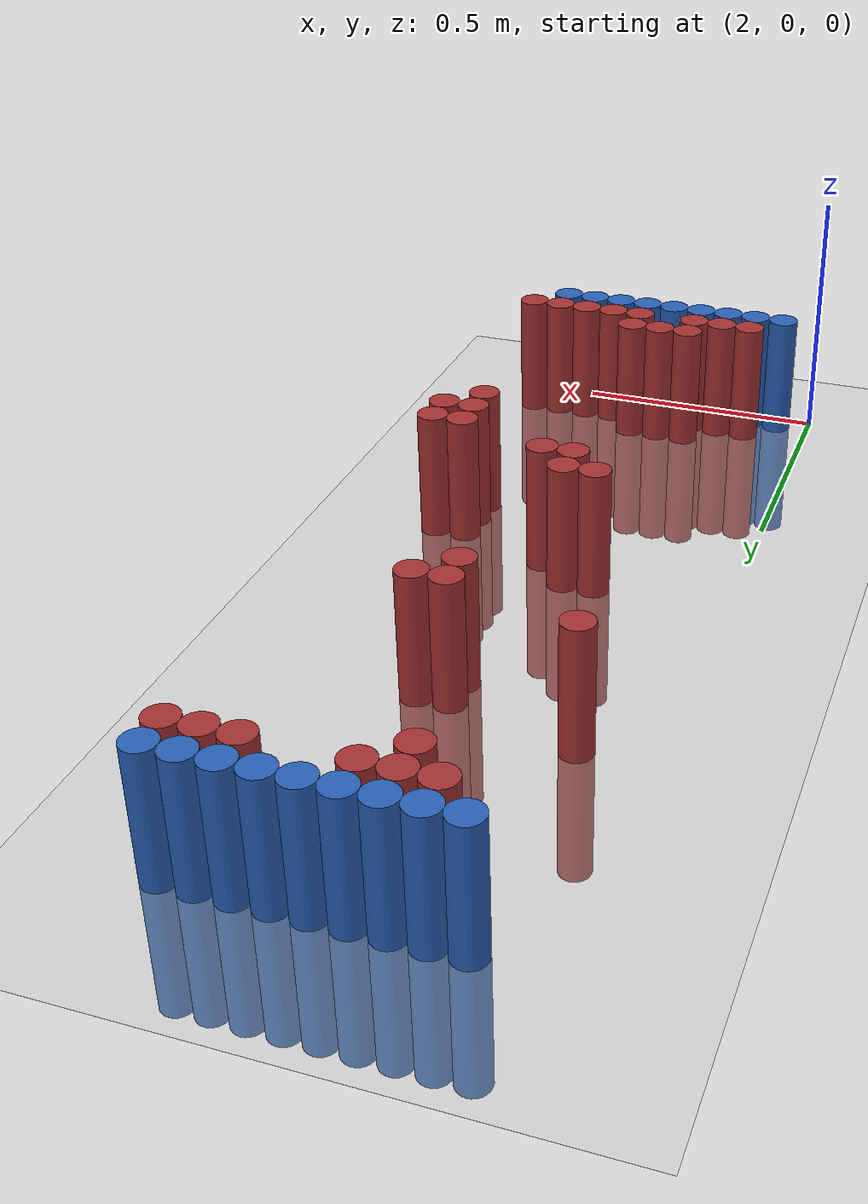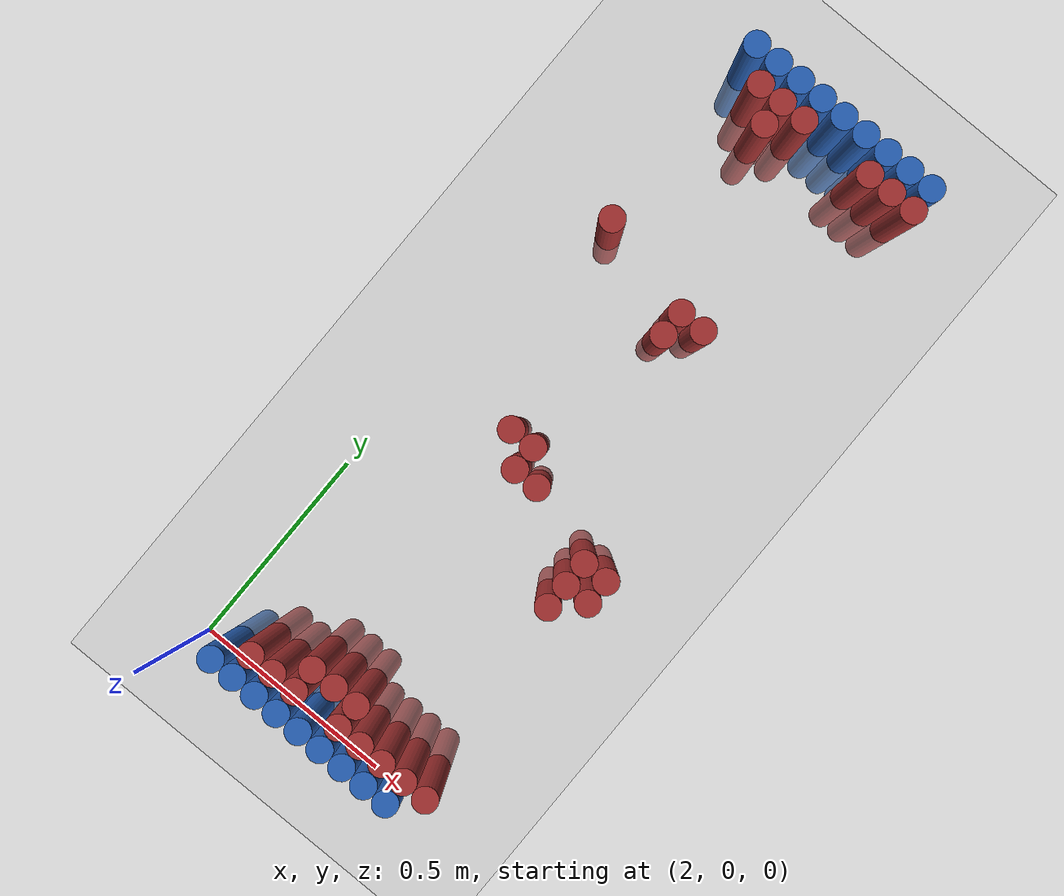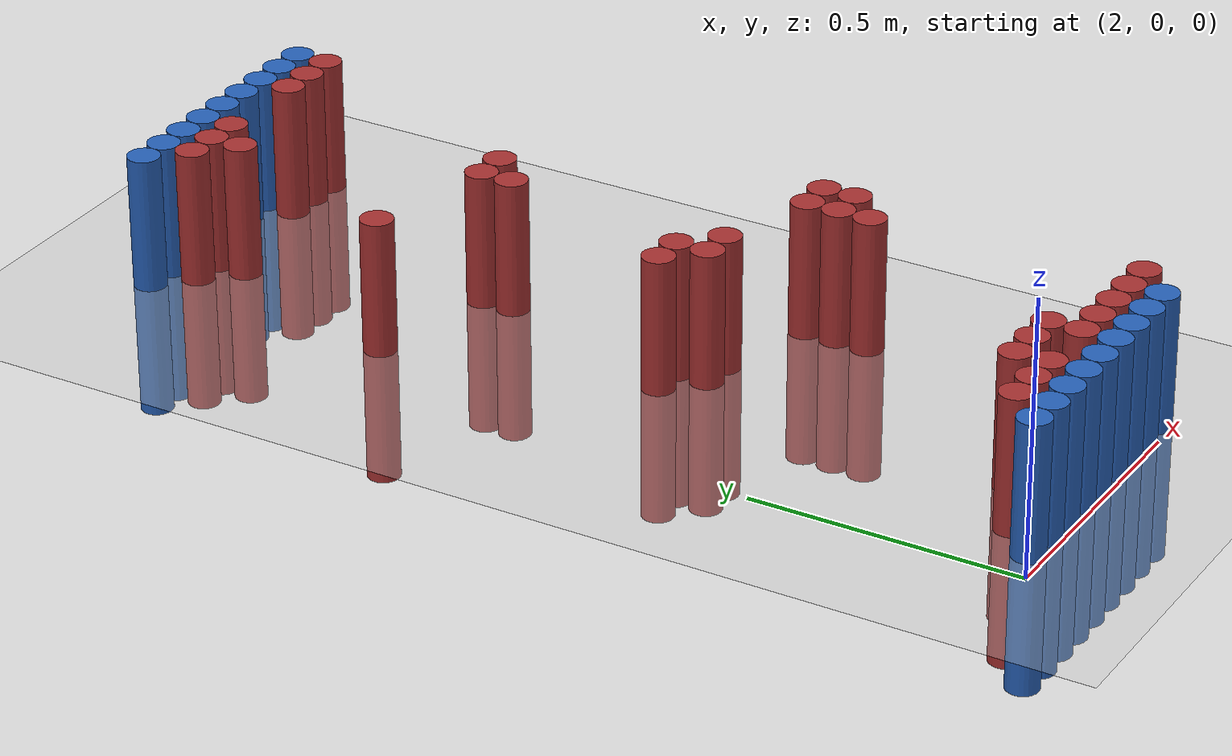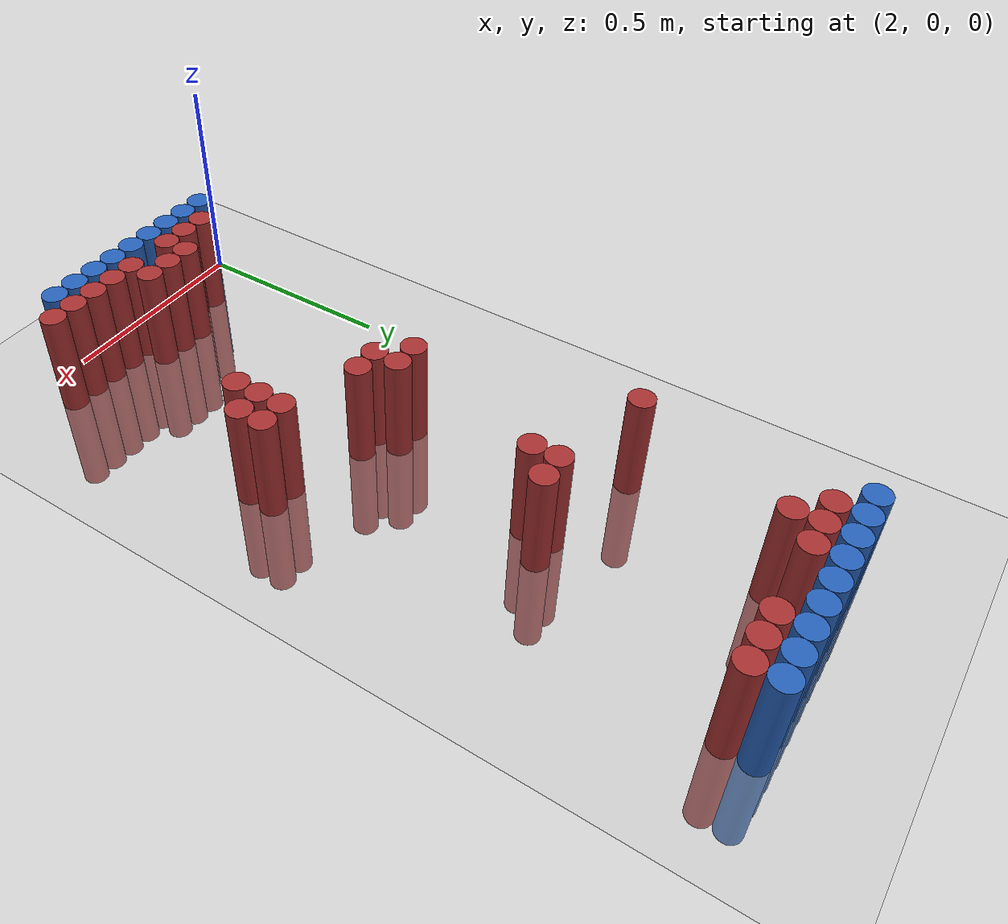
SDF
<sdf version="1.6">
 <world name="default">
  <model name="ground_plane">
   <static>1</static>
   <link name="link">
    <collision name="collision">
     <geometry><plane><normal>0 0 1</normal><size>100 100</size></plane></geometry>
     <surface><friction><ode><mu>100</mu><mu2>50</mu2></ode></friction></surface>
    </collision>
    <visual name="visual">
     <cast_shadows>0</cast_shadows>
     <geometry><plane><normal>0 0 1</normal><size>100 100</size></plane></geometry>
     <material>
      <script><uri>file://media/materials/scripts/gazebo.material</uri><name>Gazebo/Grey</name></script>
     </material>
    </visual>
   </link>
  </model>
  <model name="unit_cylinder_96">
   <static>1</static>
   <pose>2.130000 1.770000 0.000000 0.000000 0.000000 0.000000</pose>
   <link name="link">
    <inertial>
     <mass>1</mass>
     <inertia><ixx>0.145833</ixx><ixy>0</ixy><ixz>0</ixz><iyy>0.145833</iyy><iyz>0</iyz><izz>0.125</izz></inertia>
    </inertial>
    <collision name="collision">
     <geometry><cylinder><radius>0.030000</radius><length>0.5</length></cylinder></geometry>
    </collision>
    <visual name="visual">
     <geometry><cylinder><radius>0.030000</radius><length>0.5</length></cylinder></geometry>
     <material>
      <ambient>0.152000 0.379000 0.720000 1</ambient>
      <diffuse>0.152000 0.379000 0.720000 1</diffuse>
     </material>
     <material>
      <script><name>Gazebo/Grey</name><uri>file://media/materials/scripts/gazebo.material</uri></script>
     </material>
    </visual>
   </link>
  </model>
  <model name="unit_cylinder_97">
   <static>1</static>
   <pose>2.190000 1.770000 0.000000 0.000000 0.000000 0.000000</pose>
   <link name="link">
    <inertial>
     <mass>1</mass>
     <inertia><ixx>0.145833</ixx><ixy>0</ixy><ixz>0</ixz><iyy>0.145833</iyy><iyz>0</iyz><izz>0.125</izz></inertia>
    </inertial>
    <collision name="collision">
     <geometry><cylinder><radius>0.030000</radius><length>0.5</length></cylinder></geometry>
    </collision>
    <visual name="visual">
     <geometry><cylinder><radius>0.030000</radius><length>0.5</length></cylinder></geometry>
     <material>
      <ambient>0.152000 0.379000 0.720000 1</ambient>
      <diffuse>0.152000 0.379000 0.720000 1</diffuse>
     </material>
     <material>
      <script><name>Gazebo/Grey</name><uri>file://media/materials/scripts/gazebo.material</uri></script>
     </material>
    </visual>
   </link>
  </model>
  <model name="unit_cylinder_98">
   <static>1</static>
   <pose>2.250000 1.770000 0.000000 0.000000 0.000000 0.000000</pose>
   <link name="link">
    <inertial>
     <mass>1</mass>
     <inertia><ixx>0.145833</ixx><ixy>0</ixy><ixz>0</ixz><iyy>0.145833</iyy><iyz>0</iyz><izz>0.125</izz></inertia>
    </inertial>
    <collision name="collision">
     <geometry><cylinder><radius>0.030000</radius><length>0.5</length></cylinder></geometry>
    </collision>
    <visual name="visual">
     <geometry><cylinder><radius>0.030000</radius><length>0.5</length></cylinder></geometry>
     <material>
      <ambient>0.152000 0.379000 0.720000 1</ambient>
      <diffuse>0.152000 0.379000 0.720000 1</diffuse>
     </material>
     <material>
      <script><name>Gazebo/Grey</name><uri>file://media/materials/scripts/gazebo.material</uri></script>
     </material>
    </visual>
   </link>
  </model>
  <model name="unit_cylinder_99">
   <static>1</static>
   <pose>2.310000 1.770000 0.000000 0.000000 0.000000 0.000000</pose>
   <link name="link">
    <inertial>
     <mass>1</mass>
     <inertia><ixx>0.145833</ixx><ixy>0</ixy><ixz>0</ixz><iyy>0.145833</iyy><iyz>0</iyz><izz>0.125</izz></inertia>
    </inertial>
    <collision name="collision">
     <geometry><cylinder><radius>0.030000</radius><length>0.5</length></cylinder></geometry>
    </collision>
    <visual name="visual">
     <geometry><cylinder><radius>0.030000</radius><length>0.5</length></cylinder></geometry>
     <material>
      <ambient>0.152000 0.379000 0.720000 1</ambient>
      <diffuse>0.152000 0.379000 0.720000 1</diffuse>
     </material>
     <material>
      <script><name>Gazebo/Grey</name><uri>file://media/materials/scripts/gazebo.material</uri></script>
     </material>
    </visual>
   </link>
  </model>
  <model name="unit_cylinder_100">
   <static>1</static>
   <pose>2.370000 1.770000 0.000000 0.000000 0.000000 0.000000</pose>
   <link name="link">
    <inertial>
     <mass>1</mass>
     <inertia><ixx>0.145833</ixx><ixy>0</ixy><ixz>0</ixz><iyy>0.145833</iyy><iyz>0</iyz><izz>0.125</izz></inertia>
    </inertial>
    <collision name="collision">
     <geometry><cylinder><radius>0.030000</radius><length>0.5</length></cylinder></geometry>
    </collision>
    <visual name="visual">
     <geometry><cylinder><radius>0.030000</radius><length>0.5</length></cylinder></geometry>
     <material>
      <ambient>0.152000 0.379000 0.720000 1</ambient>
      <diffuse>0.152000 0.379000 0.720000 1</diffuse>
     </material>
     <material>
      <script><name>Gazebo/Grey</name><uri>file://media/materials/scripts/gazebo.material</uri></script>
     </material>
    </visual>
   </link>
  </model>
  <model name="unit_cylinder_101">
   <static>1</static>
   <pose>2.430000 1.770000 0.000000 0.000000 0.000000 0.000000</pose>
   <link name="link">
    <inertial>
     <mass>1</mass>
     <inertia><ixx>0.145833</ixx><ixy>0</ixy><ixz>0</ixz><iyy>0.145833</iyy><iyz>0</iyz><izz>0.125</izz></inertia>
    </inertial>
    <collision name="collision">
     <geometry><cylinder><radius>0.030000</radius><length>0.5</length></cylinder></geometry>
    </collision>
    <visual name="visual">
     <geometry><cylinder><radius>0.030000</radius><length>0.5</length></cylinder></geometry>
     <material>
      <ambient>0.152000 0.379000 0.720000 1</ambient>
      <diffuse>0.152000 0.379000 0.720000 1</diffuse>
     </material>
     <material>
      <script><name>Gazebo/Grey</name><uri>file://media/materials/scripts/gazebo.material</uri></script>
     </material>
    </visual>
   </link>
  </model>
  <model name="unit_cylinder_102">
   <static>1</static>
   <pose>2.490000 1.770000 0.000000 0.000000 0.000000 0.000000</pose>
   <link name="link">
    <inertial>
     <mass>1</mass>
     <inertia><ixx>0.145833</ixx><ixy>0</ixy><ixz>0</ixz><iyy>0.145833</iyy><iyz>0</iyz><izz>0.125</izz></inertia>
    </inertial>
    <collision name="collision">
     <geometry><cylinder><radius>0.030000</radius><length>0.5</length></cylinder></geometry>
    </collision>
    <visual name="visual">
     <geometry><cylinder><radius>0.030000</radius><length>0.5</length></cylinder></geometry>
     <material>
      <ambient>0.152000 0.379000 0.720000 1</ambient>
      <diffuse>0.152000 0.379000 0.720000 1</diffuse>
     </material>
     <material>
      <script><name>Gazebo/Grey</name><uri>file://media/materials/scripts/gazebo.material</uri></script>
     </material>
    </visual>
   </link>
  </model>
  <model name="unit_cylinder_103">
   <static>1</static>
   <pose>2.550000 1.770000 0.000000 0.000000 0.000000 0.000000</pose>
   <link name="link">
    <inertial>
     <mass>1</mass>
     <inertia><ixx>0.145833</ixx><ixy>0</ixy><ixz>0</ixz><iyy>0.145833</iyy><iyz>0</iyz><izz>0.125</izz></inertia>
    </inertial>
    <collision name="collision">
     <geometry><cylinder><radius>0.030000</radius><length>0.5</length></cylinder></geometry>
    </collision>
    <visual name="visual">
     <geometry><cylinder><radius>0.030000</radius><length>0.5</length></cylinder></geometry>
     <material>
      <ambient>0.152000 0.379000 0.720000 1</ambient>
      <diffuse>0.152000 0.379000 0.720000 1</diffuse>
     </material>
     <material>
      <script><name>Gazebo/Grey</name><uri>file://media/materials/scripts/gazebo.material</uri></script>
     </material>
    </visual>
   </link>
  </model>
  <model name="unit_cylinder_104">
   <static>1</static>
   <pose>2.610000 1.770000 0.000000 0.000000 0.000000 0.000000</pose>
   <link name="link">
    <inertial>
     <mass>1</mass>
     <inertia><ixx>0.145833</ixx><ixy>0</ixy><ixz>0</ixz><iyy>0.145833</iyy><iyz>0</iyz><izz>0.125</izz></inertia>
    </inertial>
    <collision name="collision">
     <geometry><cylinder><radius>0.030000</radius><length>0.5</length></cylinder></geometry>
    </collision>
    <visual name="visual">
     <geometry><cylinder><radius>0.030000</radius><length>0.5</length></cylinder></geometry>
     <material>
      <ambient>0.152000 0.379000 0.720000 1</ambient>
      <diffuse>0.152000 0.379000 0.720000 1</diffuse>
     </material>
     <material>
      <script><name>Gazebo/Grey</name><uri>file://media/materials/scripts/gazebo.material</uri></script>
     </material>
    </visual>
   </link>
  </model>
  <model name="unit_cylinder_125">
   <static>1</static>
   <pose>2.190000 1.710000 0.000000 0.000000 0.000000 0.000000</pose>
   <link name="link">
    <inertial>
     <mass>1</mass>
     <inertia><ixx>0.145833</ixx><ixy>0</ixy><ixz>0</ixz><iyy>0.145833</iyy><iyz>0</iyz><izz>0.125</izz></inertia>
    </inertial>
    <collision name="collision">
     <geometry><cylinder><radius>0.030000</radius><length>0.5</length></cylinder></geometry>
    </collision>
    <visual name="visual">
     <geometry><cylinder><radius>0.030000</radius><length>0.5</length></cylinder></geometry>
     <material>
      <ambient>0.648000 0.192000 0.192000 1</ambient>
      <diffuse>0.648000 0.192000 0.192000 1</diffuse>
     </material>
     <material>
      <script><name>Gazebo/Grey</name><uri>file://media/materials/scripts/gazebo.material</uri></script>
     </material>
    </visual>
   </link>
  </model>
  <model name="unit_cylinder_126">
   <static>1</static>
   <pose>2.250000 1.710000 0.000000 0.000000 0.000000 0.000000</pose>
   <link name="link">
    <inertial>
     <mass>1</mass>
     <inertia><ixx>0.145833</ixx><ixy>0</ixy><ixz>0</ixz><iyy>0.145833</iyy><iyz>0</iyz><izz>0.125</izz></inertia>
    </inertial>
    <collision name="collision">
     <geometry><cylinder><radius>0.030000</radius><length>0.5</length></cylinder></geometry>
    </collision>
    <visual name="visual">
     <geometry><cylinder><radius>0.030000</radius><length>0.5</length></cylinder></geometry>
     <material>
      <ambient>0.648000 0.192000 0.192000 1</ambient>
      <diffuse>0.648000 0.192000 0.192000 1</diffuse>
     </material>
     <material>
      <script><name>Gazebo/Grey</name><uri>file://media/materials/scripts/gazebo.material</uri></script>
     </material>
    </visual>
   </link>
  </model>
  <model name="unit_cylinder_127">
   <static>1</static>
   <pose>2.310000 1.710000 0.000000 0.000000 0.000000 0.000000</pose>
   <link name="link">
    <inertial>
     <mass>1</mass>
     <inertia><ixx>0.145833</ixx><ixy>0</ixy><ixz>0</ixz><iyy>0.145833</iyy><iyz>0</iyz><izz>0.125</izz></inertia>
    </inertial>
    <collision name="collision">
     <geometry><cylinder><radius>0.030000</radius><length>0.5</length></cylinder></geometry>
    </collision>
    <visual name="visual">
     <geometry><cylinder><radius>0.030000</radius><length>0.5</length></cylinder></geometry>
     <material>
      <ambient>0.648000 0.192000 0.192000 1</ambient>
      <diffuse>0.648000 0.192000 0.192000 1</diffuse>
     </material>
     <material>
      <script><name>Gazebo/Grey</name><uri>file://media/materials/scripts/gazebo.material</uri></script>
     </material>
    </visual>
   </link>
  </model>
  <model name="unit_cylinder_128">
   <static>1</static>
   <pose>2.490000 1.710000 0.000000 0.000000 0.000000 0.000000</pose>
   <link name="link">
    <inertial>
     <mass>1</mass>
     <inertia><ixx>0.145833</ixx><ixy>0</ixy><ixz>0</ixz><iyy>0.145833</iyy><iyz>0</iyz><izz>0.125</izz></inertia>
    </inertial>
    <collision name="collision">
     <geometry><cylinder><radius>0.030000</radius><length>0.5</length></cylinder></geometry>
    </collision>
    <visual name="visual">
     <geometry><cylinder><radius>0.030000</radius><length>0.5</length></cylinder></geometry>
     <material>
      <ambient>0.648000 0.192000 0.192000 1</ambient>
      <diffuse>0.648000 0.192000 0.192000 1</diffuse>
     </material>
     <material>
      <script><name>Gazebo/Grey</name><uri>file://media/materials/scripts/gazebo.material</uri></script>
     </material>
    </visual>
   </link>
  </model>
  <model name="unit_cylinder_129">
   <static>1</static>
   <pose>2.550000 1.710000 0.000000 0.000000 0.000000 0.000000</pose>
   <link name="link">
    <inertial>
     <mass>1</mass>
     <inertia><ixx>0.145833</ixx><ixy>0</ixy><ixz>0</ixz><iyy>0.145833</iyy><iyz>0</iyz><izz>0.125</izz></inertia>
    </inertial>
    <collision name="collision">
     <geometry><cylinder><radius>0.030000</radius><length>0.5</length></cylinder></geometry>
    </collision>
    <visual name="visual">
     <geometry><cylinder><radius>0.030000</radius><length>0.5</length></cylinder></geometry>
     <material>
      <ambient>0.648000 0.192000 0.192000 1</ambient>
      <diffuse>0.648000 0.192000 0.192000 1</diffuse>
     </material>
     <material>
      <script><name>Gazebo/Grey</name><uri>file://media/materials/scripts/gazebo.material</uri></script>
     </material>
    </visual>
   </link>
  </model>
  <model name="unit_cylinder_130">
   <static>1</static>
   <pose>2.610000 1.710000 0.000000 0.000000 0.000000 0.000000</pose>
   <link name="link">
    <inertial>
     <mass>1</mass>
     <inertia><ixx>0.145833</ixx><ixy>0</ixy><ixz>0</ixz><iyy>0.145833</iyy><iyz>0</iyz><izz>0.125</izz></inertia>
    </inertial>
    <collision name="collision">
     <geometry><cylinder><radius>0.030000</radius><length>0.5</length></cylinder></geometry>
    </collision>
    <visual name="visual">
     <geometry><cylinder><radius>0.030000</radius><length>0.5</length></cylinder></geometry>
     <material>
      <ambient>0.648000 0.192000 0.192000 1</ambient>
      <diffuse>0.648000 0.192000 0.192000 1</diffuse>
     </material>
     <material>
      <script><name>Gazebo/Grey</name><uri>file://media/materials/scripts/gazebo.material</uri></script>
     </material>
    </visual>
   </link>
  </model>
  <model name="unit_cylinder_138">
   <static>1</static>
   <pose>2.250000 1.650000 0.000000 0.000000 0.000000 0.000000</pose>
   <link name="link">
    <inertial>
     <mass>1</mass>
     <inertia><ixx>0.145833</ixx><ixy>0</ixy><ixz>0</ixz><iyy>0.145833</iyy><iyz>0</iyz><izz>0.125</izz></inertia>
    </inertial>
    <collision name="collision">
     <geometry><cylinder><radius>0.030000</radius><length>0.5</length></cylinder></geometry>
    </collision>
    <visual name="visual">
     <geometry><cylinder><radius>0.030000</radius><length>0.5</length></cylinder></geometry>
     <material>
      <ambient>0.648000 0.192000 0.192000 1</ambient>
      <diffuse>0.648000 0.192000 0.192000 1</diffuse>
     </material>
     <material>
      <script><name>Gazebo/Grey</name><uri>file://media/materials/scripts/gazebo.material</uri></script>
     </material>
    </visual>
   </link>
  </model>
  <model name="unit_cylinder_144">
   <static>1</static>
   <pose>2.130000 1.290000 0.000000 0.000000 0.000000 0.000000</pose>
   <link name="link">
    <inertial>
     <mass>1</mass>
     <inertia><ixx>0.145833</ixx><ixy>0</ixy><ixz>0</ixz><iyy>0.145833</iyy><iyz>0</iyz><izz>0.125</izz></inertia>
    </inertial>
    <collision name="collision">
     <geometry><cylinder><radius>0.030000</radius><length>0.5</length></cylinder></geometry>
    </collision>
    <visual name="visual">
     <geometry><cylinder><radius>0.030000</radius><length>0.5</length></cylinder></geometry>
     <material>
      <ambient>0.648000 0.192000 0.192000 1</ambient>
      <diffuse>0.648000 0.192000 0.192000 1</diffuse>
     </material>
     <material>
      <script><name>Gazebo/Grey</name><uri>file://media/materials/scripts/gazebo.material</uri></script>
     </material>
    </visual>
   </link>
  </model>
  <model name="unit_cylinder_149">
   <static>1</static>
   <pose>2.370000 1.230000 0.000000 0.000000 0.000000 0.000000</pose>
   <link name="link">
    <inertial>
     <mass>1</mass>
     <inertia><ixx>0.145833</ixx><ixy>0</ixy><ixz>0</ixz><iyy>0.145833</iyy><iyz>0</iyz><izz>0.125</izz></inertia>
    </inertial>
    <collision name="collision">
     <geometry><cylinder><radius>0.030000</radius><length>0.5</length></cylinder></geometry>
    </collision>
    <visual name="visual">
     <geometry><cylinder><radius>0.030000</radius><length>0.5</length></cylinder></geometry>
     <material>
      <ambient>0.648000 0.192000 0.192000 1</ambient>
      <diffuse>0.648000 0.192000 0.192000 1</diffuse>
     </material>
     <material>
      <script><name>Gazebo/Grey</name><uri>file://media/materials/scripts/gazebo.material</uri></script>
     </material>
    </visual>
   </link>
  </model>
  <model name="unit_cylinder_150">
   <static>1</static>
   <pose>2.430000 1.230000 0.000000 0.000000 0.000000 0.000000</pose>
   <link name="link">
    <inertial>
     <mass>1</mass>
     <inertia><ixx>0.145833</ixx><ixy>0</ixy><ixz>0</ixz><iyy>0.145833</iyy><iyz>0</iyz><izz>0.125</izz></inertia>
    </inertial>
    <collision name="collision">
     <geometry><cylinder><radius>0.030000</radius><length>0.5</length></cylinder></geometry>
    </collision>
    <visual name="visual">
     <geometry><cylinder><radius>0.030000</radius><length>0.5</length></cylinder></geometry>
     <material>
      <ambient>0.648000 0.192000 0.192000 1</ambient>
      <diffuse>0.648000 0.192000 0.192000 1</diffuse>
     </material>
     <material>
      <script><name>Gazebo/Grey</name><uri>file://media/materials/scripts/gazebo.material</uri></script>
     </material>
    </visual>
   </link>
  </model>
  <model name="unit_cylinder_155">
   <static>1</static>
   <pose>2.370000 1.170000 0.000000 0.000000 0.000000 0.000000</pose>
   <link name="link">
    <inertial>
     <mass>1</mass>
     <inertia><ixx>0.145833</ixx><ixy>0</ixy><ixz>0</ixz><iyy>0.145833</iyy><iyz>0</iyz><izz>0.125</izz></inertia>
    </inertial>
    <collision name="collision">
     <geometry><cylinder><radius>0.030000</radius><length>0.5</length></cylinder></geometry>
    </collision>
    <visual name="visual">
     <geometry><cylinder><radius>0.030000</radius><length>0.5</length></cylinder></geometry>
     <material>
      <ambient>0.648000 0.192000 0.192000 1</ambient>
      <diffuse>0.648000 0.192000 0.192000 1</diffuse>
     </material>
     <material>
      <script><name>Gazebo/Grey</name><uri>file://media/materials/scripts/gazebo.material</uri></script>
     </material>
    </visual>
   </link>
  </model>
  <model name="unit_cylinder_172">
   <static>1</static>
   <pose>2.250000 0.810000 0.000000 0.000000 0.000000 0.000000</pose>
   <link name="link">
    <inertial>
     <mass>1</mass>
     <inertia><ixx>0.145833</ixx><ixy>0</ixy><ixz>0</ixz><iyy>0.145833</iyy><iyz>0</iyz><izz>0.125</izz></inertia>
    </inertial>
    <collision name="collision">
     <geometry><cylinder><radius>0.030000</radius><length>0.5</length></cylinder></geometry>
    </collision>
    <visual name="visual">
     <geometry><cylinder><radius>0.030000</radius><length>0.5</length></cylinder></geometry>
     <material>
      <ambient>0.648000 0.192000 0.192000 1</ambient>
      <diffuse>0.648000 0.192000 0.192000 1</diffuse>
     </material>
     <material>
      <script><name>Gazebo/Grey</name><uri>file://media/materials/scripts/gazebo.material</uri></script>
     </material>
    </visual>
   </link>
  </model>
  <model name="unit_cylinder_173">
   <static>1</static>
   <pose>2.310000 0.810000 0.000000 0.000000 0.000000 0.000000</pose>
   <link name="link">
    <inertial>
     <mass>1</mass>
     <inertia><ixx>0.145833</ixx><ixy>0</ixy><ixz>0</ixz><iyy>0.145833</iyy><iyz>0</iyz><izz>0.125</izz></inertia>
    </inertial>
    <collision name="collision">
     <geometry><cylinder><radius>0.030000</radius><length>0.5</length></cylinder></geometry>
    </collision>
    <visual name="visual">
     <geometry><cylinder><radius>0.030000</radius><length>0.5</length></cylinder></geometry>
     <material>
      <ambient>0.648000 0.192000 0.192000 1</ambient>
      <diffuse>0.648000 0.192000 0.192000 1</diffuse>
     </material>
     <material>
      <script><name>Gazebo/Grey</name><uri>file://media/materials/scripts/gazebo.material</uri></script>
     </material>
    </visual>
   </link>
  </model>
  <model name="unit_cylinder_175">
   <static>1</static>
   <pose>2.310000 0.750000 0.000000 0.000000 0.000000 0.000000</pose>
   <link name="link">
    <inertial>
     <mass>1</mass>
     <inertia><ixx>0.145833</ixx><ixy>0</ixy><ixz>0</ixz><iyy>0.145833</iyy><iyz>0</iyz><izz>0.125</izz></inertia>
    </inertial>
    <collision name="collision">
     <geometry><cylinder><radius>0.030000</radius><length>0.5</length></cylinder></geometry>
    </collision>
    <visual name="visual">
     <geometry><cylinder><radius>0.030000</radius><length>0.5</length></cylinder></geometry>
     <material>
      <ambient>0.648000 0.192000 0.192000 1</ambient>
      <diffuse>0.648000 0.192000 0.192000 1</diffuse>
     </material>
     <material>
      <script><name>Gazebo/Grey</name><uri>file://media/materials/scripts/gazebo.material</uri></script>
     </material>
    </visual>
   </link>
  </model>
  <model name="unit_cylinder_176">
   <static>1</static>
   <pose>2.370000 0.750000 0.000000 0.000000 0.000000 0.000000</pose>
   <link name="link">
    <inertial>
     <mass>1</mass>
     <inertia><ixx>0.145833</ixx><ixy>0</ixy><ixz>0</ixz><iyy>0.145833</iyy><iyz>0</iyz><izz>0.125</izz></inertia>
    </inertial>
    <collision name="collision">
     <geometry><cylinder><radius>0.030000</radius><length>0.5</length></cylinder></geometry>
    </collision>
    <visual name="visual">
     <geometry><cylinder><radius>0.030000</radius><length>0.5</length></cylinder></geometry>
     <material>
      <ambient>0.648000 0.192000 0.192000 1</ambient>
      <diffuse>0.648000 0.192000 0.192000 1</diffuse>
     </material>
     <material>
      <script><name>Gazebo/Grey</name><uri>file://media/materials/scripts/gazebo.material</uri></script>
     </material>
    </visual>
   </link>
  </model>
  <model name="unit_cylinder_179">
   <static>1</static>
   <pose>2.550000 0.690000 0.000000 0.000000 0.000000 0.000000</pose>
   <link name="link">
    <inertial>
     <mass>1</mass>
     <inertia><ixx>0.145833</ixx><ixy>0</ixy><ixz>0</ixz><iyy>0.145833</iyy><iyz>0</iyz><izz>0.125</izz></inertia>
    </inertial>
    <collision name="collision">
     <geometry><cylinder><radius>0.030000</radius><length>0.5</length></cylinder></geometry>
    </collision>
    <visual name="visual">
     <geometry><cylinder><radius>0.030000</radius><length>0.5</length></cylinder></geometry>
     <material>
      <ambient>0.648000 0.192000 0.192000 1</ambient>
      <diffuse>0.648000 0.192000 0.192000 1</diffuse>
     </material>
     <material>
      <script><name>Gazebo/Grey</name><uri>file://media/materials/scripts/gazebo.material</uri></script>
     </material>
    </visual>
   </link>
  </model>
  <model name="unit_cylinder_180">
   <static>1</static>
   <pose>2.610000 0.690000 0.000000 0.000000 0.000000 0.000000</pose>
   <link name="link">
    <inertial>
     <mass>1</mass>
     <inertia><ixx>0.145833</ixx><ixy>0</ixy><ixz>0</ixz><iyy>0.145833</iyy><iyz>0</iyz><izz>0.125</izz></inertia>
    </inertial>
    <collision name="collision">
     <geometry><cylinder><radius>0.030000</radius><length>0.5</length></cylinder></geometry>
    </collision>
    <visual name="visual">
     <geometry><cylinder><radius>0.030000</radius><length>0.5</length></cylinder></geometry>
     <material>
      <ambient>0.648000 0.192000 0.192000 1</ambient>
      <diffuse>0.648000 0.192000 0.192000 1</diffuse>
     </material>
     <material>
      <script><name>Gazebo/Grey</name><uri>file://media/materials/scripts/gazebo.material</uri></script>
     </material>
    </visual>
   </link>
  </model>
  <model name="unit_cylinder_183">
   <static>1</static>
   <pose>2.550000 0.630000 0.000000 0.000000 0.000000 0.000000</pose>
   <link name="link">
    <inertial>
     <mass>1</mass>
     <inertia><ixx>0.145833</ixx><ixy>0</ixy><ixz>0</ixz><iyy>0.145833</iyy><iyz>0</iyz><izz>0.125</izz></inertia>
    </inertial>
    <collision name="collision">
     <geometry><cylinder><radius>0.030000</radius><length>0.5</length></cylinder></geometry>
    </collision>
    <visual name="visual">
     <geometry><cylinder><radius>0.030000</radius><length>0.5</length></cylinder></geometry>
     <material>
      <ambient>0.648000 0.192000 0.192000 1</ambient>
      <diffuse>0.648000 0.192000 0.192000 1</diffuse>
     </material>
     <material>
      <script><name>Gazebo/Grey</name><uri>file://media/materials/scripts/gazebo.material</uri></script>
     </material>
    </visual>
   </link>
  </model>
  <model name="unit_cylinder_184">
   <static>1</static>
   <pose>2.610000 0.630000 0.000000 0.000000 0.000000 0.000000</pose>
   <link name="link">
    <inertial>
     <mass>1</mass>
     <inertia><ixx>0.145833</ixx><ixy>0</ixy><ixz>0</ixz><iyy>0.145833</iyy><iyz>0</iyz><izz>0.125</izz></inertia>
    </inertial>
    <collision name="collision">
     <geometry><cylinder><radius>0.030000</radius><length>0.5</length></cylinder></geometry>
    </collision>
    <visual name="visual">
     <geometry><cylinder><radius>0.030000</radius><length>0.5</length></cylinder></geometry>
     <material>
      <ambient>0.648000 0.192000 0.192000 1</ambient>
      <diffuse>0.648000 0.192000 0.192000 1</diffuse>
     </material>
     <material>
      <script><name>Gazebo/Grey</name><uri>file://media/materials/scripts/gazebo.material</uri></script>
     </material>
    </visual>
   </link>
  </model>
  <model name="unit_cylinder_187">
   <static>1</static>
   <pose>2.550000 0.570000 0.000000 0.000000 0.000000 0.000000</pose>
   <link name="link">
    <inertial>
     <mass>1</mass>
     <inertia><ixx>0.145833</ixx><ixy>0</ixy><ixz>0</ixz><iyy>0.145833</iyy><iyz>0</iyz><izz>0.125</izz></inertia>
    </inertial>
    <collision name="collision">
     <geometry><cylinder><radius>0.030000</radius><length>0.5</length></cylinder></geometry>
    </collision>
    <visual name="visual">
     <geometry><cylinder><radius>0.030000</radius><length>0.5</length></cylinder></geometry>
     <material>
      <ambient>0.648000 0.192000 0.192000 1</ambient>
      <diffuse>0.648000 0.192000 0.192000 1</diffuse>
     </material>
     <material>
      <script><name>Gazebo/Grey</name><uri>file://media/materials/scripts/gazebo.material</uri></script>
     </material>
    </visual>
   </link>
  </model>
  <model name="unit_cylinder_188">
   <static>1</static>
   <pose>2.250000 0.150000 0.000000 0.000000 0.000000 0.000000</pose>
   <link name="link">
    <inertial>
     <mass>1</mass>
     <inertia><ixx>0.145833</ixx><ixy>0</ixy><ixz>0</ixz><iyy>0.145833</iyy><iyz>0</iyz><izz>0.125</izz></inertia>
    </inertial>
    <collision name="collision">
     <geometry><cylinder><radius>0.030000</radius><length>0.5</length></cylinder></geometry>
    </collision>
    <visual name="visual">
     <geometry><cylinder><radius>0.030000</radius><length>0.5</length></cylinder></geometry>
     <material>
      <ambient>0.648000 0.192000 0.192000 1</ambient>
      <diffuse>0.648000 0.192000 0.192000 1</diffuse>
     </material>
     <material>
      <script><name>Gazebo/Grey</name><uri>file://media/materials/scripts/gazebo.material</uri></script>
     </material>
    </visual>
   </link>
  </model>
  <model name="unit_cylinder_189">
   <static>1</static>
   <pose>2.310000 0.150000 0.000000 0.000000 0.000000 0.000000</pose>
   <link name="link">
    <inertial>
     <mass>1</mass>
     <inertia><ixx>0.145833</ixx><ixy>0</ixy><ixz>0</ixz><iyy>0.145833</iyy><iyz>0</iyz><izz>0.125</izz></inertia>
    </inertial>
    <collision name="collision">
     <geometry><cylinder><radius>0.030000</radius><length>0.5</length></cylinder></geometry>
    </collision>
    <visual name="visual">
     <geometry><cylinder><radius>0.030000</radius><length>0.5</length></cylinder></geometry>
     <material>
      <ambient>0.648000 0.192000 0.192000 1</ambient>
      <diffuse>0.648000 0.192000 0.192000 1</diffuse>
     </material>
     <material>
      <script><name>Gazebo/Grey</name><uri>file://media/materials/scripts/gazebo.material</uri></script>
     </material>
    </visual>
   </link>
  </model>
  <model name="unit_cylinder_190">
   <static>1</static>
   <pose>2.370000 0.150000 0.000000 0.000000 0.000000 0.000000</pose>
   <link name="link">
    <inertial>
     <mass>1</mass>
     <inertia><ixx>0.145833</ixx><ixy>0</ixy><ixz>0</ixz><iyy>0.145833</iyy><iyz>0</iyz><izz>0.125</izz></inertia>
    </inertial>
    <collision name="collision">
     <geometry><cylinder><radius>0.030000</radius><length>0.5</length></cylinder></geometry>
    </collision>
    <visual name="visual">
     <geometry><cylinder><radius>0.030000</radius><length>0.5</length></cylinder></geometry>
     <material>
      <ambient>0.648000 0.192000 0.192000 1</ambient>
      <diffuse>0.648000 0.192000 0.192000 1</diffuse>
     </material>
     <material>
      <script><name>Gazebo/Grey</name><uri>file://media/materials/scripts/gazebo.material</uri></script>
     </material>
    </visual>
   </link>
  </model>
  <model name="unit_cylinder_196">
   <static>1</static>
   <pose>2.130000 0.090000 0.000000 0.000000 0.000000 0.000000</pose>
   <link name="link">
    <inertial>
     <mass>1</mass>
     <inertia><ixx>0.145833</ixx><ixy>0</ixy><ixz>0</ixz><iyy>0.145833</iyy><iyz>0</iyz><izz>0.125</izz></inertia>
    </inertial>
    <collision name="collision">
     <geometry><cylinder><radius>0.030000</radius><length>0.5</length></cylinder></geometry>
    </collision>
    <visual name="visual">
     <geometry><cylinder><radius>0.030000</radius><length>0.5</length></cylinder></geometry>
     <material>
      <ambient>0.648000 0.192000 0.192000 1</ambient>
      <diffuse>0.648000 0.192000 0.192000 1</diffuse>
     </material>
     <material>
      <script><name>Gazebo/Grey</name><uri>file://media/materials/scripts/gazebo.material</uri></script>
     </material>
    </visual>
   </link>
  </model>
  <model name="unit_cylinder_197">
   <static>1</static>
   <pose>2.190000 0.090000 0.000000 0.000000 0.000000 0.000000</pose>
   <link name="link">
    <inertial>
     <mass>1</mass>
     <inertia><ixx>0.145833</ixx><ixy>0</ixy><ixz>0</ixz><iyy>0.145833</iyy><iyz>0</iyz><izz>0.125</izz></inertia>
    </inertial>
    <collision name="collision">
     <geometry><cylinder><radius>0.030000</radius><length>0.5</length></cylinder></geometry>
    </collision>
    <visual name="visual">
     <geometry><cylinder><radius>0.030000</radius><length>0.5</length></cylinder></geometry>
     <material>
      <ambient>0.648000 0.192000 0.192000 1</ambient>
      <diffuse>0.648000 0.192000 0.192000 1</diffuse>
     </material>
     <material>
      <script><name>Gazebo/Grey</name><uri>file://media/materials/scripts/gazebo.material</uri></script>
     </material>
    </visual>
   </link>
  </model>
  <model name="unit_cylinder_198">
   <static>1</static>
   <pose>2.250000 0.090000 0.000000 0.000000 0.000000 0.000000</pose>
   <link name="link">
    <inertial>
     <mass>1</mass>
     <inertia><ixx>0.145833</ixx><ixy>0</ixy><ixz>0</ixz><iyy>0.145833</iyy><iyz>0</iyz><izz>0.125</izz></inertia>
    </inertial>
    <collision name="collision">
     <geometry><cylinder><radius>0.030000</radius><length>0.5</length></cylinder></geometry>
    </collision>
    <visual name="visual">
     <geometry><cylinder><radius>0.030000</radius><length>0.5</length></cylinder></geometry>
     <material>
      <ambient>0.648000 0.192000 0.192000 1</ambient>
      <diffuse>0.648000 0.192000 0.192000 1</diffuse>
     </material>
     <material>
      <script><name>Gazebo/Grey</name><uri>file://media/materials/scripts/gazebo.material</uri></script>
     </material>
    </visual>
   </link>
  </model>
  <model name="unit_cylinder_199">
   <static>1</static>
   <pose>2.370000 0.090000 0.000000 0.000000 0.000000 0.000000</pose>
   <link name="link">
    <inertial>
     <mass>1</mass>
     <inertia><ixx>0.145833</ixx><ixy>0</ixy><ixz>0</ixz><iyy>0.145833</iyy><iyz>0</iyz><izz>0.125</izz></inertia>
    </inertial>
    <collision name="collision">
     <geometry><cylinder><radius>0.030000</radius><length>0.5</length></cylinder></geometry>
    </collision>
    <visual name="visual">
     <geometry><cylinder><radius>0.030000</radius><length>0.5</length></cylinder></geometry>
     <material>
      <ambient>0.648000 0.192000 0.192000 1</ambient>
      <diffuse>0.648000 0.192000 0.192000 1</diffuse>
     </material>
     <material>
      <script><name>Gazebo/Grey</name><uri>file://media/materials/scripts/gazebo.material</uri></script>
     </material>
    </visual>
   </link>
  </model>
  <model name="unit_cylinder_200">
   <static>1</static>
   <pose>2.430000 0.090000 0.000000 0.000000 0.000000 0.000000</pose>
   <link name="link">
    <inertial>
     <mass>1</mass>
     <inertia><ixx>0.145833</ixx><ixy>0</ixy><ixz>0</ixz><iyy>0.145833</iyy><iyz>0</iyz><izz>0.125</izz></inertia>
    </inertial>
    <collision name="collision">
     <geometry><cylinder><radius>0.030000</radius><length>0.5</length></cylinder></geometry>
    </collision>
    <visual name="visual">
     <geometry><cylinder><radius>0.030000</radius><length>0.5</length></cylinder></geometry>
     <material>
      <ambient>0.648000 0.192000 0.192000 1</ambient>
      <diffuse>0.648000 0.192000 0.192000 1</diffuse>
     </material>
     <material>
      <script><name>Gazebo/Grey</name><uri>file://media/materials/scripts/gazebo.material</uri></script>
     </material>
    </visual>
   </link>
  </model>
  <model name="unit_cylinder_201">
   <static>1</static>
   <pose>2.490000 0.090000 0.000000 0.000000 0.000000 0.000000</pose>
   <link name="link">
    <inertial>
     <mass>1</mass>
     <inertia><ixx>0.145833</ixx><ixy>0</ixy><ixz>0</ixz><iyy>0.145833</iyy><iyz>0</iyz><izz>0.125</izz></inertia>
    </inertial>
    <collision name="collision">
     <geometry><cylinder><radius>0.030000</radius><length>0.5</length></cylinder></geometry>
    </collision>
    <visual name="visual">
     <geometry><cylinder><radius>0.030000</radius><length>0.5</length></cylinder></geometry>
     <material>
      <ambient>0.648000 0.192000 0.192000 1</ambient>
      <diffuse>0.648000 0.192000 0.192000 1</diffuse>
     </material>
     <material>
      <script><name>Gazebo/Grey</name><uri>file://media/materials/scripts/gazebo.material</uri></script>
     </material>
    </visual>
   </link>
  </model>
  <model name="unit_cylinder_202">
   <static>1</static>
   <pose>2.550000 0.090000 0.000000 0.000000 0.000000 0.000000</pose>
   <link name="link">
    <inertial>
     <mass>1</mass>
     <inertia><ixx>0.145833</ixx><ixy>0</ixy><ixz>0</ixz><iyy>0.145833</iyy><iyz>0</iyz><izz>0.125</izz></inertia>
    </inertial>
    <collision name="collision">
     <geometry><cylinder><radius>0.030000</radius><length>0.5</length></cylinder></geometry>
    </collision>
    <visual name="visual">
     <geometry><cylinder><radius>0.030000</radius><length>0.5</length></cylinder></geometry>
     <material>
      <ambient>0.648000 0.192000 0.192000 1</ambient>
      <diffuse>0.648000 0.192000 0.192000 1</diffuse>
     </material>
     <material>
      <script><name>Gazebo/Grey</name><uri>file://media/materials/scripts/gazebo.material</uri></script>
     </material>
    </visual>
   </link>
  </model>
  <model name="unit_cylinder_203">
   <static>1</static>
   <pose>2.610000 0.090000 0.000000 0.000000 0.000000 0.000000</pose>
   <link name="link">
    <inertial>
     <mass>1</mass>
     <inertia><ixx>0.145833</ixx><ixy>0</ixy><ixz>0</ixz><iyy>0.145833</iyy><iyz>0</iyz><izz>0.125</izz></inertia>
    </inertial>
    <collision name="collision">
     <geometry><cylinder><radius>0.030000</radius><length>0.5</length></cylinder></geometry>
    </collision>
    <visual name="visual">
     <geometry><cylinder><radius>0.030000</radius><length>0.5</length></cylinder></geometry>
     <material>
      <ambient>0.648000 0.192000 0.192000 1</ambient>
      <diffuse>0.648000 0.192000 0.192000 1</diffuse>
     </material>
     <material>
      <script><name>Gazebo/Grey</name><uri>file://media/materials/scripts/gazebo.material</uri></script>
     </material>
    </visual>
   </link>
  </model>
  <model name="unit_cylinder_215">
   <static>1</static>
   <pose>2.070000 0.030000 0.000000 0.000000 0.000000 0.000000</pose>
   <link name="link">
    <inertial>
     <mass>1</mass>
     <inertia><ixx>0.145833</ixx><ixy>0</ixy><ixz>0</ixz><iyy>0.145833</iyy><iyz>0</iyz><izz>0.125</izz></inertia>
    </inertial>
    <collision name="collision">
     <geometry><cylinder><radius>0.030000</radius><length>0.5</length></cylinder></geometry>
    </collision>
    <visual name="visual">
     <geometry><cylinder><radius>0.030000</radius><length>0.5</length></cylinder></geometry>
     <material>
      <ambient>0.152000 0.379000 0.720000 1</ambient>
      <diffuse>0.152000 0.379000 0.720000 1</diffuse>
     </material>
     <material>
      <script><name>Gazebo/Grey</name><uri>file://media/materials/scripts/gazebo.material</uri></script>
     </material>
    </visual>
   </link>
  </model>
  <model name="unit_cylinder_216">
   <static>1</static>
   <pose>2.130000 0.030000 0.000000 0.000000 0.000000 0.000000</pose>
   <link name="link">
    <inertial>
     <mass>1</mass>
     <inertia><ixx>0.145833</ixx><ixy>0</ixy><ixz>0</ixz><iyy>0.145833</iyy><iyz>0</iyz><izz>0.125</izz></inertia>
    </inertial>
    <collision name="collision">
     <geometry><cylinder><radius>0.030000</radius><length>0.5</length></cylinder></geometry>
    </collision>
    <visual name="visual">
     <geometry><cylinder><radius>0.030000</radius><length>0.5</length></cylinder></geometry>
     <material>
      <ambient>0.152000 0.379000 0.720000 1</ambient>
      <diffuse>0.152000 0.379000 0.720000 1</diffuse>
     </material>
     <material>
      <script><name>Gazebo/Grey</name><uri>file://media/materials/scripts/gazebo.material</uri></script>
     </material>
    </visual>
   </link>
  </model>
  <model name="unit_cylinder_217">
   <static>1</static>
   <pose>2.190000 0.030000 0.000000 0.000000 0.000000 0.000000</pose>
   <link name="link">
    <inertial>
     <mass>1</mass>
     <inertia><ixx>0.145833</ixx><ixy>0</ixy><ixz>0</ixz><iyy>0.145833</iyy><iyz>0</iyz><izz>0.125</izz></inertia>
    </inertial>
    <collision name="collision">
     <geometry><cylinder><radius>0.030000</radius><length>0.5</length></cylinder></geometry>
    </collision>
    <visual name="visual">
     <geometry><cylinder><radius>0.030000</radius><length>0.5</length></cylinder></geometry>
     <material>
      <ambient>0.152000 0.379000 0.720000 1</ambient>
      <diffuse>0.152000 0.379000 0.720000 1</diffuse>
     </material>
     <material>
      <script><name>Gazebo/Grey</name><uri>file://media/materials/scripts/gazebo.material</uri></script>
     </material>
    </visual>
   </link>
  </model>
  <model name="unit_cylinder_218">
   <static>1</static>
   <pose>2.250000 0.030000 0.000000 0.000000 0.000000 0.000000</pose>
   <link name="link">
    <inertial>
     <mass>1</mass>
     <inertia><ixx>0.145833</ixx><ixy>0</ixy><ixz>0</ixz><iyy>0.145833</iyy><iyz>0</iyz><izz>0.125</izz></inertia>
    </inertial>
    <collision name="collision">
     <geometry><cylinder><radius>0.030000</radius><length>0.5</length></cylinder></geometry>
    </collision>
    <visual name="visual">
     <geometry><cylinder><radius>0.030000</radius><length>0.5</length></cylinder></geometry>
     <material>
      <ambient>0.152000 0.379000 0.720000 1</ambient>
      <diffuse>0.152000 0.379000 0.720000 1</diffuse>
     </material>
     <material>
      <script><name>Gazebo/Grey</name><uri>file://media/materials/scripts/gazebo.material</uri></script>
     </material>
    </visual>
   </link>
  </model>
  <model name="unit_cylinder_219">
   <static>1</static>
   <pose>2.310000 0.030000 0.000000 0.000000 0.000000 0.000000</pose>
   <link name="link">
    <inertial>
     <mass>1</mass>
     <inertia><ixx>0.145833</ixx><ixy>0</ixy><ixz>0</ixz><iyy>0.145833</iyy><iyz>0</iyz><izz>0.125</izz></inertia>
    </inertial>
    <collision name="collision">
     <geometry><cylinder><radius>0.030000</radius><length>0.5</length></cylinder></geometry>
    </collision>
    <visual name="visual">
     <geometry><cylinder><radius>0.030000</radius><length>0.5</length></cylinder></geometry>
     <material>
      <ambient>0.152000 0.379000 0.720000 1</ambient>
      <diffuse>0.152000 0.379000 0.720000 1</diffuse>
     </material>
     <material>
      <script><name>Gazebo/Grey</name><uri>file://media/materials/scripts/gazebo.material</uri></script>
     </material>
    </visual>
   </link>
  </model>
  <model name="unit_cylinder_220">
   <static>1</static>
   <pose>2.370000 0.030000 0.000000 0.000000 0.000000 0.000000</pose>
   <link name="link">
    <inertial>
     <mass>1</mass>
     <inertia><ixx>0.145833</ixx><ixy>0</ixy><ixz>0</ixz><iyy>0.145833</iyy><iyz>0</iyz><izz>0.125</izz></inertia>
    </inertial>
    <collision name="collision">
     <geometry><cylinder><radius>0.030000</radius><length>0.5</length></cylinder></geometry>
    </collision>
    <visual name="visual">
     <geometry><cylinder><radius>0.030000</radius><length>0.5</length></cylinder></geometry>
     <material>
      <ambient>0.152000 0.379000 0.720000 1</ambient>
      <diffuse>0.152000 0.379000 0.720000 1</diffuse>
     </material>
     <material>
      <script><name>Gazebo/Grey</name><uri>file://media/materials/scripts/gazebo.material</uri></script>
     </material>
    </visual>
   </link>
  </model>
  <model name="unit_cylinder_221">
   <static>1</static>
   <pose>2.430000 0.030000 0.000000 0.000000 0.000000 0.000000</pose>
   <link name="link">
    <inertial>
     <mass>1</mass>
     <inertia><ixx>0.145833</ixx><ixy>0</ixy><ixz>0</ixz><iyy>0.145833</iyy><iyz>0</iyz><izz>0.125</izz></inertia>
    </inertial>
    <collision name="collision">
     <geometry><cylinder><radius>0.030000</radius><length>0.5</length></cylinder></geometry>
    </collision>
    <visual name="visual">
     <geometry><cylinder><radius>0.030000</radius><length>0.5</length></cylinder></geometry>
     <material>
      <ambient>0.152000 0.379000 0.720000 1</ambient>
      <diffuse>0.152000 0.379000 0.720000 1</diffuse>
     </material>
     <material>
      <script><name>Gazebo/Grey</name><uri>file://media/materials/scripts/gazebo.material</uri></script>
     </material>
    </visual>
   </link>
  </model>
  <model name="unit_cylinder_222">
   <static>1</static>
   <pose>2.490000 0.030000 0.000000 0.000000 0.000000 0.000000</pose>
   <link name="link">
    <inertial>
     <mass>1</mass>
     <inertia><ixx>0.145833</ixx><ixy>0</ixy><ixz>0</ixz><iyy>0.145833</iyy><iyz>0</iyz><izz>0.125</izz></inertia>
    </inertial>
    <collision name="collision">
     <geometry><cylinder><radius>0.030000</radius><length>0.5</length></cylinder></geometry>
    </collision>
    <visual name="visual">
     <geometry><cylinder><radius>0.030000</radius><length>0.5</length></cylinder></geometry>
     <material>
      <ambient>0.152000 0.379000 0.720000 1</ambient>
      <diffuse>0.152000 0.379000 0.720000 1</diffuse>
     </material>
     <material>
      <script><name>Gazebo/Grey</name><uri>file://media/materials/scripts/gazebo.material</uri></script>
     </material>
    </visual>
   </link>
  </model>
  <model name="unit_cylinder_223">
   <static>1</static>
   <pose>2.550000 0.030000 0.000000 0.000000 0.000000 0.000000</pose>
   <link name="link">
    <inertial>
     <mass>1</mass>
     <inertia><ixx>0.145833</ixx><ixy>0</ixy><ixz>0</ixz><iyy>0.145833</iyy><iyz>0</iyz><izz>0.125</izz></inertia>
    </inertial>
    <collision name="collision">
     <geometry><cylinder><radius>0.030000</radius><length>0.5</length></cylinder></geometry>
    </collision>
    <visual name="visual">
     <geometry><cylinder><radius>0.030000</radius><length>0.5</length></cylinder></geometry>
     <material>
      <ambient>0.152000 0.379000 0.720000 1</ambient>
      <diffuse>0.152000 0.379000 0.720000 1</diffuse>
     </material>
     <material>
      <script><name>Gazebo/Grey</name><uri>file://media/materials/scripts/gazebo.material</uri></script>
     </material>
    </visual>
   </link>
  </model>
 </world>
</sdf>
